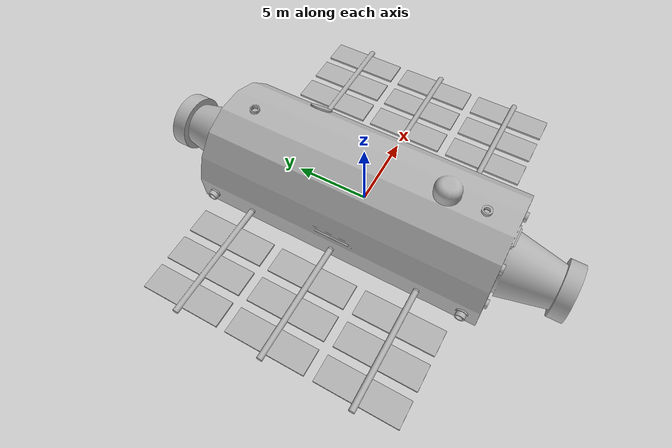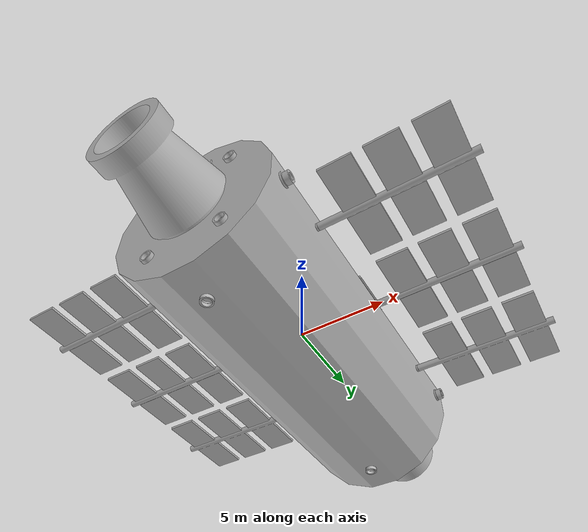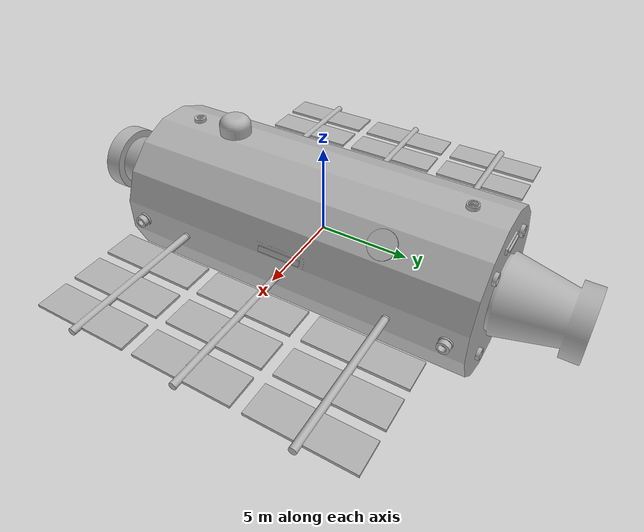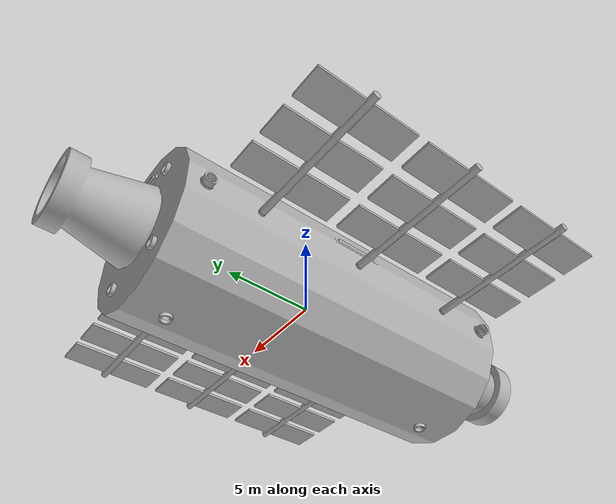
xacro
<?xml version="1.0" ?>
<robot name="space_station" xmlns:xacro="http://www.ros.org/wiki/xacro">

<xacro:include filename="$(find space_station_description)/urdf/materials.xacro" />
<xacro:include filename="$(find space_station_description)/urdf/space_station.trans" />
<xacro:include filename="$(find space_station_description)/urdf/space_station.gazebo" />

<xacro:property name="use_fixed_joint" value="true"/>

<link name="base_link">
  <inertial>
    <origin xyz="0.000574324589074325 0.030373043905383902 0.008402956067706836" rpy="0 0 0"/>
    <mass value="15000.0"/>
    <inertia ixx="367106180.976249" iyy="95256060.656933" izz="366784605.89785" ixy="32671.823244" iyz="420616.843653" ixz="-4413.413957"/>
  </inertial>
  <visual>
    <origin xyz="0 0 0" rpy="0 0 0"/>
    <geometry>
      <mesh filename="file://$(find space_station_description)/meshes/base_link.stl" scale="0.001 0.001 0.001"/>
    </geometry>
    <material name="silver"/>
  </visual>
  <collision>
    <origin xyz="0 0 0" rpy="0 0 0"/>
    <geometry>
      <mesh filename="file://$(find space_station_description)/meshes/base_link.stl" scale="0.001 0.001 0.001"/>
    </geometry>
  </collision>
</link>

<link name="th2_1">
  <inertial>
    <origin xyz="-0.011407106149771806 -0.09999999999999964 0.00605200870657896" rpy="0 0 0"/>
    <mass value="212.70545760211388"/>
    <inertia ixx="9.63613" iyy="17.820615" izz="9.602522" ixy="0.0" iyz="-0.0" ixz="-0.024814"/>
  </inertial>
  <visual>
    <origin xyz="-2.007871 10.0 -2.495824" rpy="0 0 0"/>
    <geometry>
      <mesh filename="file://$(find space_station_description)/meshes/th2_1.stl" scale="0.001 0.001 0.001"/>
    </geometry>
    <material name="silver"/>
  </visual>
  <collision>
    <origin xyz="-2.007871 10.0 -2.495824" rpy="0 0 0"/>
    <geometry>
      <mesh filename="file://$(find space_station_description)/meshes/th2_1.stl" scale="0.001 0.001 0.001"/>
    </geometry>
  </collision>
</link>

<link name="th1_1">
  <inertial>
    <origin xyz="-0.02972025496014319 -0.09999999999999964 0.005554958615336503" rpy="0 0 0"/>
    <mass value="212.7054576021139"/>
    <inertia ixx="9.638203" iyy="17.551943" izz="9.331777" ixy="-0.0" iyz="0.0" ixz="-0.059344"/>
  </inertial>
  <visual>
    <origin xyz="-2.020507 10.0 2.503833" rpy="0 0 0"/>
    <geometry>
      <mesh filename="file://$(find space_station_description)/meshes/th1_1.stl" scale="0.001 0.001 0.001"/>
    </geometry>
    <material name="silver"/>
  </visual>
  <collision>
    <origin xyz="-2.020507 10.0 2.503833" rpy="0 0 0"/>
    <geometry>
      <mesh filename="file://$(find space_station_description)/meshes/th1_1.stl" scale="0.001 0.001 0.001"/>
    </geometry>
  </collision>
</link>

<link name="camera_front_1">
  <inertial>
    <origin xyz="0.0041090989999844965 -0.05000000000000071 -0.0004997698338091716" rpy="0 0 0"/>
    <mass value="125.89847784256487"/>
    <inertia ixx="0.308196" iyy="18.365409" izz="18.267044" ixy="0.0" iyz="0.0" ixz="-0.000259"/>
  </inertial>
  <visual>
    <origin xyz="-0.0 10.1 -3.15" rpy="0 0 0"/>
    <geometry>
      <mesh filename="file://$(find space_station_description)/meshes/camera_front_1.stl" scale="0.001 0.001 0.001"/>
    </geometry>
    <material name="silver"/>
  </visual>
  <collision>
    <origin xyz="-0.0 10.1 -3.15" rpy="0 0 0"/>
    <geometry>
      <mesh filename="file://$(find space_station_description)/meshes/camera_front_1.stl" scale="0.001 0.001 0.001"/>
    </geometry>
  </collision>
</link>

<link name="th4_1">
  <inertial>
    <origin xyz="-0.0230030327810804 -0.20000000000005436 0.002243586799012043" rpy="0 0 0"/>
    <mass value="212.70545760211388"/>
    <inertia ixx="9.647485" iyy="17.688527" izz="9.459079" ixy="0.0" iyz="-0.0" ixz="-0.018554"/>
  </inertial>
  <visual>
    <origin xyz="1.984128 9.9 -2.498452" rpy="0 0 0"/>
    <geometry>
      <mesh filename="file://$(find space_station_description)/meshes/th4_1.stl" scale="0.001 0.001 0.001"/>
    </geometry>
    <material name="silver"/>
  </visual>
  <collision>
    <origin xyz="1.984128 9.9 -2.498452" rpy="0 0 0"/>
    <geometry>
      <mesh filename="file://$(find space_station_description)/meshes/th4_1.stl" scale="0.001 0.001 0.001"/>
    </geometry>
  </collision>
</link>

<link name="docking_port_back_1">
  <inertial>
    <origin xyz="0.044966206089208094 -1.8355220724311785 -0.011434572980852235" rpy="0 0 0"/>
    <mass value="233731.50121118044"/>
    <inertia ixx="681356.265853" iyy="594986.526547" izz="679924.980351" ixy="-898.843224" iyz="228.573731" ixz="-389.136998"/>
  </inertial>
  <visual>
    <origin xyz="0.100631 10.0 -0.02559" rpy="0 0 0"/>
    <geometry>
      <mesh filename="file://$(find space_station_description)/meshes/docking_port_back_1.stl" scale="0.001 0.001 0.001"/>
    </geometry>
    <material name="silver"/>
  </visual>
  <collision>
    <origin xyz="0.100631 10.0 -0.02559" rpy="0 0 0"/>
    <geometry>
      <mesh filename="file://$(find space_station_description)/meshes/docking_port_back_1.stl" scale="0.001 0.001 0.001"/>
    </geometry>
  </collision>
</link>

<link name="th3_1">
  <inertial>
    <origin xyz="-0.012369628789436371 -0.09999999999999609 0.013267970266699791" rpy="0 0 0"/>
    <mass value="212.70545760211388"/>
    <inertia ixx="9.586016" iyy="17.762271" izz="9.594291" ixy="-0.0" iyz="-0.0" ixz="-0.058996"/>
  </inertial>
  <visual>
    <origin xyz="1.991465 10.0 2.509155" rpy="0 0 0"/>
    <geometry>
      <mesh filename="file://$(find space_station_description)/meshes/th3_1.stl" scale="0.001 0.001 0.001"/>
    </geometry>
    <material name="silver"/>
  </visual>
  <collision>
    <origin xyz="1.991465 10.0 2.509155" rpy="0 0 0"/>
    <geometry>
      <mesh filename="file://$(find space_station_description)/meshes/th3_1.stl" scale="0.001 0.001 0.001"/>
    </geometry>
  </collision>
</link>

<link name="th9_1">
  <inertial>
    <origin xyz="0.14999999999999858 0.0015750680123911565 0.002185974817124674" rpy="0 0 0"/>
    <mass value="485.5233271352601"/>
    <inertia ixx="35.34286" iyy="21.311382" izz="21.314328" ixy="0.0" iyz="0.004414" ixz="0.0"/>
  </inertial>
  <visual>
    <origin xyz="-4.5 9.0 -0.0" rpy="0 0 0"/>
    <geometry>
      <mesh filename="file://$(find space_station_description)/meshes/th9_1.stl" scale="0.001 0.001 0.001"/>
    </geometry>
    <material name="silver"/>
  </visual>
  <collision>
    <origin xyz="-4.5 9.0 -0.0" rpy="0 0 0"/>
    <geometry>
      <mesh filename="file://$(find space_station_description)/meshes/th9_1.stl" scale="0.001 0.001 0.001"/>
    </geometry>
  </collision>
</link>

<link name="rsa_1_1">
  <inertial>
    <origin xyz="4.395937349552122 0.0 -0.019796867477606176" rpy="0 0 0"/>
    <mass value="37917.93074581755"/>
    <inertia ixx="78986.901098" iyy="152360.306972" izz="231068.964489" ixy="-0.0" iyz="0.0" ixz="78.115279"/>
  </inertial>
  <visual>
    <origin xyz="-4.5 6.0 -0.0" rpy="0 0 0"/>
    <geometry>
      <mesh filename="file://$(find space_station_description)/meshes/rsa_1_1.stl" scale="0.001 0.001 0.001"/>
    </geometry>
    <material name="silver"/>
  </visual>
  <collision>
    <origin xyz="-4.5 6.0 -0.0" rpy="0 0 0"/>
    <geometry>
      <mesh filename="file://$(find space_station_description)/meshes/rsa_1_1.stl" scale="0.001 0.001 0.001"/>
    </geometry>
  </collision>
</link>

<link name="rsa_2_1">
  <inertial>
    <origin xyz="4.395937349552122 0.0 -0.019796867477606204" rpy="0 0 0"/>
    <mass value="37917.93074581756"/>
    <inertia ixx="78986.901098" iyy="152360.306972" izz="231068.964489" ixy="0.0" iyz="0.0" ixz="78.115279"/>
  </inertial>
  <visual>
    <origin xyz="-4.5 -0.0 -0.0" rpy="0 0 0"/>
    <geometry>
      <mesh filename="file://$(find space_station_description)/meshes/rsa_2_1.stl" scale="0.001 0.001 0.001"/>
    </geometry>
    <material name="silver"/>
  </visual>
  <collision>
    <origin xyz="-4.5 -0.0 -0.0" rpy="0 0 0"/>
    <geometry>
      <mesh filename="file://$(find space_station_description)/meshes/rsa_2_1.stl" scale="0.001 0.001 0.001"/>
    </geometry>
  </collision>
</link>

<link name="rsa_3_1">
  <inertial>
    <origin xyz="4.395937349552122 8.881784197001252e-16 -0.019796867477606176" rpy="0 0 0"/>
    <mass value="37917.93074581755"/>
    <inertia ixx="78986.901098" iyy="152360.306972" izz="231068.964489" ixy="0.0" iyz="0.0" ixz="78.115279"/>
  </inertial>
  <visual>
    <origin xyz="-4.5 -6.0 -0.0" rpy="0 0 0"/>
    <geometry>
      <mesh filename="file://$(find space_station_description)/meshes/rsa_3_1.stl" scale="0.001 0.001 0.001"/>
    </geometry>
    <material name="silver"/>
  </visual>
  <collision>
    <origin xyz="-4.5 -6.0 -0.0" rpy="0 0 0"/>
    <geometry>
      <mesh filename="file://$(find space_station_description)/meshes/rsa_3_1.stl" scale="0.001 0.001 0.001"/>
    </geometry>
  </collision>
</link>

<link name="th10_1">
  <inertial>
    <origin xyz="0.14999999999999858 0.0140756566068454 0.004128165376782233" rpy="0 0 0"/>
    <mass value="485.5233271352601"/>
    <inertia ixx="35.076306" iyy="21.29566" izz="21.063497" ixy="0.0" iyz="0.074498" ixz="-0.0"/>
  </inertial>
  <visual>
    <origin xyz="-4.5 -9.0 -0.0" rpy="0 0 0"/>
    <geometry>
      <mesh filename="file://$(find space_station_description)/meshes/th10_1.stl" scale="0.001 0.001 0.001"/>
    </geometry>
    <material name="silver"/>
  </visual>
  <collision>
    <origin xyz="-4.5 -9.0 -0.0" rpy="0 0 0"/>
    <geometry>
      <mesh filename="file://$(find space_station_description)/meshes/th10_1.stl" scale="0.001 0.001 0.001"/>
    </geometry>
  </collision>
</link>

<link name="camera_right_1">
  <inertial>
    <origin xyz="0.04619425833027524 2.4912674780400157e-07 0.01913383550365877" rpy="0 0 0"/>
    <mass value="565.2000000000029"/>
    <inertia ixx="274.983189" iyy="4.71" izz="272.318811" ixy="0.0" iyz="0.0" ixz="1.332189"/>
  </inertial>
  <visual>
    <origin xyz="-4.299176 0.020923 -1.144756" rpy="0 0 0"/>
    <geometry>
      <mesh filename="file://$(find space_station_description)/meshes/camera_right_1.stl" scale="0.001 0.001 0.001"/>
    </geometry>
    <material name="silver"/>
  </visual>
  <collision>
    <origin xyz="-4.299176 0.020923 -1.144756" rpy="0 0 0"/>
    <geometry>
      <mesh filename="file://$(find space_station_description)/meshes/camera_right_1.stl" scale="0.001 0.001 0.001"/>
    </geometry>
  </collision>
</link>

<link name="th14_1">
  <inertial>
    <origin xyz="0.016385047452796484 -0.002269094695383167 0.09999999999999787" rpy="0 0 0"/>
    <mass value="323.68221809017336"/>
    <inertia ixx="12.858594" iyy="12.633517" izz="23.334229" ixy="-0.031785" iyz="-0.0" ixz="-0.0"/>
  </inertial>
  <visual>
    <origin xyz="0.026882 7.996277 -4.4" rpy="0 0 0"/>
    <geometry>
      <mesh filename="file://$(find space_station_description)/meshes/th14_1.stl" scale="0.001 0.001 0.001"/>
    </geometry>
    <material name="silver"/>
  </visual>
  <collision>
    <origin xyz="0.026882 7.996277 -4.4" rpy="0 0 0"/>
    <geometry>
      <mesh filename="file://$(find space_station_description)/meshes/th14_1.stl" scale="0.001 0.001 0.001"/>
    </geometry>
  </collision>
</link>

<link name="th13_1">
  <inertial>
    <origin xyz="3.029459121478274e-17 1.7763568394002505e-15 0.09999999999999698" rpy="0 0 0"/>
    <mass value="212.70545760211388"/>
    <inertia ixx="9.649294" iyy="9.649294" izz="17.880553" ixy="-0.0" iyz="0.0" ixz="0.0"/>
  </inertial>
  <visual>
    <origin xyz="0.0 -8.0 -4.4" rpy="0 0 0"/>
    <geometry>
      <mesh filename="file://$(find space_station_description)/meshes/th13_1.stl" scale="0.001 0.001 0.001"/>
    </geometry>
    <material name="silver"/>
  </visual>
  <collision>
    <origin xyz="0.0 -8.0 -4.4" rpy="0 0 0"/>
    <geometry>
      <mesh filename="file://$(find space_station_description)/meshes/th13_1.stl" scale="0.001 0.001 0.001"/>
    </geometry>
  </collision>
</link>

<link name="canada_arm_base_1">
  <inertial>
    <origin xyz="0.035355244091976434 -4.085620730620576e-14 0.03535524409192714" rpy="0 0 0"/>
    <mass value="1387.2095061007365"/>
    <inertia ixx="293.192509" iyy="196.232345" izz="293.192509" ixy="-0.0" iyz="-0.0" ixz="96.960164"/>
  </inertial>
  <visual>
    <origin xyz="-3.118341 -5.0 -3.118341" rpy="0 0 0"/>
    <geometry>
      <mesh filename="file://$(find space_station_description)/meshes/canada_arm_base_1.stl" scale="0.001 0.001 0.001"/>
    </geometry>
    <material name="silver"/>
  </visual>
  <collision>
    <origin xyz="-3.118341 -5.0 -3.118341" rpy="0 0 0"/>
    <geometry>
      <mesh filename="file://$(find space_station_description)/meshes/canada_arm_base_1.stl" scale="0.001 0.001 0.001"/>
    </geometry>
  </collision>
</link>

<link name="th11_1">
  <inertial>
    <origin xyz="-0.15000000000000124 0.0 5.728486622729424e-17" rpy="0 0 0"/>
    <mass value="319.058186403171"/>
    <inertia ixx="26.820829" iyy="15.803351" izz="15.803351" ixy="0.0" iyz="-0.0" ixz="0.0"/>
  </inertial>
  <visual>
    <origin xyz="4.5 9.0 -0.0" rpy="0 0 0"/>
    <geometry>
      <mesh filename="file://$(find space_station_description)/meshes/th11_1.stl" scale="0.001 0.001 0.001"/>
    </geometry>
    <material name="silver"/>
  </visual>
  <collision>
    <origin xyz="4.5 9.0 -0.0" rpy="0 0 0"/>
    <geometry>
      <mesh filename="file://$(find space_station_description)/meshes/th11_1.stl" scale="0.001 0.001 0.001"/>
    </geometry>
  </collision>
</link>

<link name="lsa_1_1">
  <inertial>
    <origin xyz="-4.395937349552124 8.881784197001252e-16 -0.019796867477606176" rpy="0 0 0"/>
    <mass value="37917.93074581755"/>
    <inertia ixx="78986.901098" iyy="152360.306972" izz="231068.964489" ixy="-0.0" iyz="-0.0" ixz="-78.115279"/>
  </inertial>
  <visual>
    <origin xyz="4.5 6.0 -0.0" rpy="0 0 0"/>
    <geometry>
      <mesh filename="file://$(find space_station_description)/meshes/lsa_1_1.stl" scale="0.001 0.001 0.001"/>
    </geometry>
    <material name="silver"/>
  </visual>
  <collision>
    <origin xyz="4.5 6.0 -0.0" rpy="0 0 0"/>
    <geometry>
      <mesh filename="file://$(find space_station_description)/meshes/lsa_1_1.stl" scale="0.001 0.001 0.001"/>
    </geometry>
  </collision>
</link>

<link name="camera_left_1">
  <inertial>
    <origin xyz="-0.04619425833027346 2.4912674780400157e-07 0.01913383550365877" rpy="0 0 0"/>
    <mass value="565.2000000000025"/>
    <inertia ixx="274.983189" iyy="4.71" izz="272.318811" ixy="-0.0" iyz="-0.0" ixz="-1.332189"/>
  </inertial>
  <visual>
    <origin xyz="4.299176 0.020923 -1.144756" rpy="0 0 0"/>
    <geometry>
      <mesh filename="file://$(find space_station_description)/meshes/camera_left_1.stl" scale="0.001 0.001 0.001"/>
    </geometry>
    <material name="silver"/>
  </visual>
  <collision>
    <origin xyz="4.299176 0.020923 -1.144756" rpy="0 0 0"/>
    <geometry>
      <mesh filename="file://$(find space_station_description)/meshes/camera_left_1.stl" scale="0.001 0.001 0.001"/>
    </geometry>
  </collision>
</link>

<link name="lsa_2_1">
  <inertial>
    <origin xyz="-4.395937349552122 0.0 -0.019796867477606204" rpy="0 0 0"/>
    <mass value="37917.93074581756"/>
    <inertia ixx="78986.901098" iyy="152360.306972" izz="231068.964489" ixy="-0.0" iyz="0.0" ixz="-78.115279"/>
  </inertial>
  <visual>
    <origin xyz="4.5 -0.0 -0.0" rpy="0 0 0"/>
    <geometry>
      <mesh filename="file://$(find space_station_description)/meshes/lsa_2_1.stl" scale="0.001 0.001 0.001"/>
    </geometry>
    <material name="silver"/>
  </visual>
  <collision>
    <origin xyz="4.5 -0.0 -0.0" rpy="0 0 0"/>
    <geometry>
      <mesh filename="file://$(find space_station_description)/meshes/lsa_2_1.stl" scale="0.001 0.001 0.001"/>
    </geometry>
  </collision>
</link>

<link name="th12_1">
  <inertial>
    <origin xyz="-0.15000000000000124 0.01431200139042943 0.005829799887012026" rpy="0 0 0"/>
    <mass value="319.058186403171"/>
    <inertia ixx="26.692055" iyy="15.785025" izz="15.692903" ixy="-0.0" iyz="0.044989" ixz="0.0"/>
  </inertial>
  <visual>
    <origin xyz="4.5 -9.0 -0.0" rpy="0 0 0"/>
    <geometry>
      <mesh filename="file://$(find space_station_description)/meshes/th12_1.stl" scale="0.001 0.001 0.001"/>
    </geometry>
    <material name="silver"/>
  </visual>
  <collision>
    <origin xyz="4.5 -9.0 -0.0" rpy="0 0 0"/>
    <geometry>
      <mesh filename="file://$(find space_station_description)/meshes/th12_1.stl" scale="0.001 0.001 0.001"/>
    </geometry>
  </collision>
</link>

<link name="lsa_3_1">
  <inertial>
    <origin xyz="-4.395937349552124 8.881784197001252e-16 -0.019796867477606176" rpy="0 0 0"/>
    <mass value="37917.93074581755"/>
    <inertia ixx="78986.901098" iyy="152360.306972" izz="231068.964489" ixy="-0.0" iyz="0.0" ixz="-78.115279"/>
  </inertial>
  <visual>
    <origin xyz="4.5 -6.0 -0.0" rpy="0 0 0"/>
    <geometry>
      <mesh filename="file://$(find space_station_description)/meshes/lsa_3_1.stl" scale="0.001 0.001 0.001"/>
    </geometry>
    <material name="silver"/>
  </visual>
  <collision>
    <origin xyz="4.5 -6.0 -0.0" rpy="0 0 0"/>
    <geometry>
      <mesh filename="file://$(find space_station_description)/meshes/lsa_3_1.stl" scale="0.001 0.001 0.001"/>
    </geometry>
  </collision>
</link>

<link name="th16_1">
  <inertial>
    <origin xyz="-0.009695745153111699 -0.003034617655115923 -0.09999999999999876" rpy="0 0 0"/>
    <mass value="212.70545760211388"/>
    <inertia ixx="9.645985" iyy="9.6155" izz="17.843448" ixy="0.010576" iyz="0.0" ixz="-0.0"/>
  </inertial>
  <visual>
    <origin xyz="-0.00669 7.997906 4.4" rpy="0 0 0"/>
    <geometry>
      <mesh filename="file://$(find space_station_description)/meshes/th16_1.stl" scale="0.001 0.001 0.001"/>
    </geometry>
    <material name="silver"/>
  </visual>
  <collision>
    <origin xyz="-0.00669 7.997906 4.4" rpy="0 0 0"/>
    <geometry>
      <mesh filename="file://$(find space_station_description)/meshes/th16_1.stl" scale="0.001 0.001 0.001"/>
    </geometry>
  </collision>
</link>

<link name="th15_1">
  <inertial>
    <origin xyz="-0.0017984688940079069 -0.004427691520348276 -0.09999999999999876" rpy="0 0 0"/>
    <mass value="212.70545760211388"/>
    <inertia ixx="9.642246" iyy="9.648132" izz="17.872342" ixy="0.002862" iyz="0.0" ixz="-0.0"/>
  </inertial>
  <visual>
    <origin xyz="-0.001241 -8.003055 4.4" rpy="0 0 0"/>
    <geometry>
      <mesh filename="file://$(find space_station_description)/meshes/th15_1.stl" scale="0.001 0.001 0.001"/>
    </geometry>
    <material name="silver"/>
  </visual>
  <collision>
    <origin xyz="-0.001241 -8.003055 4.4" rpy="0 0 0"/>
    <geometry>
      <mesh filename="file://$(find space_station_description)/meshes/th15_1.stl" scale="0.001 0.001 0.001"/>
    </geometry>
  </collision>
</link>

<link name="th8_1">
  <inertial>
    <origin xyz="2.220446049250313e-16 0.09999999999999964 -4.440892098500626e-16" rpy="0 0 0"/>
    <mass value="212.7054576021139"/>
    <inertia ixx="9.649294" iyy="17.880553" izz="9.649294" ixy="0.0" iyz="-0.0" ixz="0.0"/>
  </inertial>
  <visual>
    <origin xyz="2.0 -10.0 -2.5" rpy="0 0 0"/>
    <geometry>
      <mesh filename="file://$(find space_station_description)/meshes/th8_1.stl" scale="0.001 0.001 0.001"/>
    </geometry>
    <material name="silver"/>
  </visual>
  <collision>
    <origin xyz="2.0 -10.0 -2.5" rpy="0 0 0"/>
    <geometry>
      <mesh filename="file://$(find space_station_description)/meshes/th8_1.stl" scale="0.001 0.001 0.001"/>
    </geometry>
  </collision>
</link>

<link name="th7_1">
  <inertial>
    <origin xyz="-0.025539251025601617 0.09999999999999964 0.010049332143581502" rpy="0 0 0"/>
    <mass value="212.7054576021139"/>
    <inertia ixx="9.612991" iyy="17.609777" izz="9.414823" ixy="0.0" iyz="0.0" ixz="-0.092262"/>
  </inertial>
  <visual>
    <origin xyz="1.982378 -10.0 2.506934" rpy="0 0 0"/>
    <geometry>
      <mesh filename="file://$(find space_station_description)/meshes/th7_1.stl" scale="0.001 0.001 0.001"/>
    </geometry>
    <material name="silver"/>
  </visual>
  <collision>
    <origin xyz="1.982378 -10.0 2.506934" rpy="0 0 0"/>
    <geometry>
      <mesh filename="file://$(find space_station_description)/meshes/th7_1.stl" scale="0.001 0.001 0.001"/>
    </geometry>
  </collision>
</link>

<link name="th6_1">
  <inertial>
    <origin xyz="-1.3719873859230347e-07 0.09999999999999964 -1.0421835394680556e-07" rpy="0 0 0"/>
    <mass value="212.7054576021139"/>
    <inertia ixx="9.649294" iyy="17.880553" izz="9.649294" ixy="0.0" iyz="-0.0" ixz="0.0"/>
  </inertial>
  <visual>
    <origin xyz="-2.000104 -10.0 2.503617" rpy="0 0 0"/>
    <geometry>
      <mesh filename="file://$(find space_station_description)/meshes/th6_1.stl" scale="0.001 0.001 0.001"/>
    </geometry>
    <material name="silver"/>
  </visual>
  <collision>
    <origin xyz="-2.000104 -10.0 2.503617" rpy="0 0 0"/>
    <geometry>
      <mesh filename="file://$(find space_station_description)/meshes/th6_1.stl" scale="0.001 0.001 0.001"/>
    </geometry>
  </collision>
</link>

<link name="camera_back_1">
  <inertial>
    <origin xyz="0.0041090989999844965 0.05000000000000071 -0.0004997698338091716" rpy="0 0 0"/>
    <mass value="125.89847784256487"/>
    <inertia ixx="0.308196" iyy="18.365409" izz="18.267044" ixy="-0.0" iyz="0.0" ixz="-0.000259"/>
  </inertial>
  <visual>
    <origin xyz="-0.0 -10.1 -3.15" rpy="0 0 0"/>
    <geometry>
      <mesh filename="file://$(find space_station_description)/meshes/camera_back_1.stl" scale="0.001 0.001 0.001"/>
    </geometry>
    <material name="silver"/>
  </visual>
  <collision>
    <origin xyz="-0.0 -10.1 -3.15" rpy="0 0 0"/>
    <geometry>
      <mesh filename="file://$(find space_station_description)/meshes/camera_back_1.stl" scale="0.001 0.001 0.001"/>
    </geometry>
  </collision>
</link>

<link name="th5_1">
  <inertial>
    <origin xyz="-0.00015052579892915752 0.09999999999999964 0.005242180026600707" rpy="0 0 0"/>
    <mass value="212.7054576021139"/>
    <inertia ixx="9.639416" iyy="17.870666" izz="9.649286" ixy="-0.0" iyz="0.0" ixz="-0.000284"/>
  </inertial>
  <visual>
    <origin xyz="-2.0 -10.0 -2.5" rpy="0 0 0"/>
    <geometry>
      <mesh filename="file://$(find space_station_description)/meshes/th5_1.stl" scale="0.001 0.001 0.001"/>
    </geometry>
    <material name="silver"/>
  </visual>
  <collision>
    <origin xyz="-2.0 -10.0 -2.5" rpy="0 0 0"/>
    <geometry>
      <mesh filename="file://$(find space_station_description)/meshes/th5_1.stl" scale="0.001 0.001 0.001"/>
    </geometry>
  </collision>
</link>

<link name="docking_port_front_1">
  <inertial>
    <origin xyz="-0.0011701302631783206 1.6938550352951953 0.0023416593849563145" rpy="0 0 0"/>
    <mass value="308332.545761487"/>
    <inertia ixx="762245.424635" iyy="641725.412691" izz="762259.800532" ixy="471.243053" iyz="-943.049464" ixz="-9.574394"/>
  </inertial>
  <visual>
    <origin xyz="-0.0 -10.0 0.0" rpy="0 0 0"/>
    <geometry>
      <mesh filename="file://$(find space_station_description)/meshes/docking_port_front_1.stl" scale="0.001 0.001 0.001"/>
    </geometry>
    <material name="silver"/>
  </visual>
  <collision>
    <origin xyz="-0.0 -10.0 0.0" rpy="0 0 0"/>
    <geometry>
      <mesh filename="file://$(find space_station_description)/meshes/docking_port_front_1.stl" scale="0.001 0.001 0.001"/>
    </geometry>
  </collision>
</link>

<joint name="xp_th_1" type="${'fixed' if str(use_fixed_joint) == 'true' else 'continuous'}">
  <origin xyz="2.007871 -10.0 2.495824" rpy="0 0 0"/>
  <parent link="base_link"/>
  <child link="th2_1"/>
  <axis xyz="0.0 1.0 0.0"/>

</joint>

<joint name="xp_th_2" type="${'fixed' if str(use_fixed_joint) == 'true' else 'continuous'}">
  <origin xyz="2.020507 -10.0 -2.503833" rpy="0 0 0"/>
  <parent link="base_link"/>
  <child link="th1_1"/>
  <axis xyz="0.0 1.0 0.0"/>

</joint>

<joint name="camera_b" type="fixed">
  <origin xyz="0.0 -10.1 3.15" rpy="0 0 0"/>
  <parent link="base_link"/>
  <child link="camera_front_1"/>
  <axis xyz="0.0 -1.0 0.0"/>
  <limit upper="0.0" lower="0.0" effort="100" velocity="100"/>
</joint>

<joint name="xp_th_3" type="${'fixed' if str(use_fixed_joint) == 'true' else 'continuous'}">
  <origin xyz="-1.984128 -9.9 2.498452" rpy="0 0 0"/>
  <parent link="base_link"/>
  <child link="th4_1"/>
  <axis xyz="0.0 -1.0 0.0"/>

</joint>

<joint name="docking_port_b" type="revolute">
  <origin xyz="-0.100631 -10.0 0.02559" rpy="0 0 0"/>
  <parent link="base_link"/>
  <child link="docking_port_back_1"/>
  <axis xyz="0.0 1.0 0.0"/>
  <limit upper="0.0" lower="0.0" effort="100" velocity="100"/>
</joint>

<joint name="xp_th_4" type="${'fixed' if str(use_fixed_joint) == 'true' else 'continuous'}">
  <origin xyz="-1.991465 -10.0 -2.509155" rpy="0 0 0"/>
  <parent link="base_link"/>
  <child link="th3_1"/>
  <axis xyz="0.0 1.0 0.0"/>

</joint>

<joint name="yn_th_1" type="${'fixed' if str(use_fixed_joint) == 'true' else 'continuous'}">
  <origin xyz="4.5 -9.0 0.0" rpy="0 0 0"/>
  <parent link="base_link"/>
  <child link="th9_1"/>
  <axis xyz="1.0 0.0 0.0"/>

</joint>

<joint name="rsa_1" type="${'fixed' if str(use_fixed_joint) == 'true' else 'continuous'}">
  <origin xyz="4.5 -6.0 0.0" rpy="0 0 0"/>
  <parent link="base_link"/>
  <child link="rsa_1_1"/>
  <axis xyz="1.0 0.0 0.0"/>
</joint>

<joint name="rsa_2" type="${'fixed' if str(use_fixed_joint) == 'true' else 'continuous'}">
  <origin xyz="4.5 0.0 0.0" rpy="0 0 0"/>
  <parent link="base_link"/>
  <child link="rsa_2_1"/>
  <axis xyz="1.0 0.0 0.0"/>
</joint>

<joint name="rsa_3" type="${'fixed' if str(use_fixed_joint) == 'true' else 'continuous'}">
  <origin xyz="4.5 6.0 0.0" rpy="0 0 0"/>
  <parent link="base_link"/>
  <child link="rsa_3_1"/>
  <axis xyz="1.0 0.0 0.0"/>
</joint>

<joint name="yn_th_2" type="${'fixed' if str(use_fixed_joint) == 'true' else 'continuous'}">
  <origin xyz="4.5 9.0 0.0" rpy="0 0 0"/>
  <parent link="base_link"/>
  <child link="th10_1"/>
  <axis xyz="1.0 0.0 0.0"/>

</joint>

<joint name="camera_r" type="fixed">
  <origin xyz="4.299176 -0.020923 1.144756" rpy="0 0 0"/>
  <parent link="base_link"/>
  <child link="camera_right_1"/>
  <axis xyz="0.92388 0.0 0.382683"/>

</joint>

<joint name="zn_th_1" type="${'fixed' if str(use_fixed_joint) == 'true' else 'continuous'}">
  <origin xyz="-0.026882 -7.996277 4.4" rpy="0 0 0"/>
  <parent link="base_link"/>
  <child link="th14_1"/>
  <axis xyz="0.0 0.0 -1.0"/>

</joint>

<joint name="zn_th_2" type="${'fixed' if str(use_fixed_joint) == 'true' else 'continuous'}">
  <origin xyz="0.0 8.0 4.4" rpy="0 0 0"/>
  <parent link="base_link"/>
  <child link="th13_1"/>
  <axis xyz="0.0 0.0 -1.0"/>

</joint>

<joint name="canada_arm_ss_base" type="revolute">
  <origin xyz="3.118341 5.0 3.118341" rpy="0 0 0"/>
  <parent link="base_link"/>
  <child link="canada_arm_base_1"/>
  <axis xyz="0.707107 0.0 0.707107"/>
  <limit upper="0.0" lower="0.0" effort="100" velocity="100"/>
</joint>

<joint name="yp_th_1" type="${'fixed' if str(use_fixed_joint) == 'true' else 'continuous'}">
  <origin xyz="-4.5 -9.0 0.0" rpy="0 0 0"/>
  <parent link="base_link"/>
  <child link="th11_1"/>
  <axis xyz="-1.0 0.0 0.0"/>

</joint>

<joint name="lsa_1" type="${'fixed' if str(use_fixed_joint) == 'true' else 'continuous'}">
  <origin xyz="-4.5 -6.0 0.0" rpy="0 0 0"/>
  <parent link="base_link"/>
  <child link="lsa_1_1"/>
  <axis xyz="-1.0 0.0 0.0"/>
</joint>

<joint name="camera_l" type="fixed">
  <origin xyz="-4.299176 -0.020923 1.144756" rpy="0 0 3.14"/>
  <parent link="base_link"/>
  <child link="camera_left_1"/>
  <axis xyz="-0.92388 0.0 0.382683"/>
  <limit upper="0.0" lower="0.0" effort="100" velocity="100"/>
</joint>

<joint name="lsa_2" type="${'fixed' if str(use_fixed_joint) == 'true' else 'continuous'}">
  <origin xyz="-4.5 0.0 0.0" rpy="0 0 0"/>
  <parent link="base_link"/>
  <child link="lsa_2_1"/>
  <axis xyz="-1.0 0.0 0.0"/>
</joint>

<joint name="yp_th_2" type="${'fixed' if str(use_fixed_joint) == 'true' else 'continuous'}">
  <origin xyz="-4.5 9.0 0.0" rpy="0 0 0"/>
  <parent link="base_link"/>
  <child link="th12_1"/>
  <axis xyz="-1.0 0.0 0.0"/>

</joint>

<joint name="lsa_3" type="${'fixed' if str(use_fixed_joint) == 'true' else 'continuous'}">
  <origin xyz="-4.5 6.0 0.0" rpy="0 0 0"/>
  <parent link="base_link"/>
  <child link="lsa_3_1"/>
  <axis xyz="-1.0 0.0 0.0"/>

</joint>

<joint name="zp_th_1" type="${'fixed' if str(use_fixed_joint) == 'true' else 'continuous'}">
  <origin xyz="0.00669 -7.997906 -4.4" rpy="0 0 0"/>
  <parent link="base_link"/>
  <child link="th16_1"/>
  <axis xyz="0.0 0.0 1.0"/>

</joint>

<joint name="zp_th_2" type="${'fixed' if str(use_fixed_joint) == 'true' else 'continuous'}">
  <origin xyz="0.001241 8.003055 -4.4" rpy="0 0 0"/>
  <parent link="base_link"/>
  <child link="th15_1"/>
  <axis xyz="0.0 0.0 1.0"/>

</joint>

<joint name="xn_th_1" type="${'fixed' if str(use_fixed_joint) == 'true' else 'continuous'}">
  <origin xyz="-2.0 10.0 2.5" rpy="0 0 0"/>
  <parent link="base_link"/>
  <child link="th8_1"/>
  <axis xyz="0.0 -1.0 0.0"/>

</joint>

<joint name="xn_th_2" type="${'fixed' if str(use_fixed_joint) == 'true' else 'continuous'}">
  <origin xyz="-1.982378 10.0 -2.506934" rpy="0 0 0"/>
  <parent link="base_link"/>
  <child link="th7_1"/>
  <axis xyz="0.0 -1.0 0.0"/>

</joint>

<joint name="xn_th_3" type="${'fixed' if str(use_fixed_joint) == 'true' else 'continuous'}">
  <origin xyz="2.000104 10.0 -2.503617" rpy="0 0 0"/>
  <parent link="base_link"/>
  <child link="th6_1"/>
  <axis xyz="0.0 -1.0 0.0"/>

</joint>

<joint name="camera_f" type="fixed">
  <origin xyz="0.0 10.1 3.15" rpy="0 0 0"/>
  <parent link="base_link"/>
  <child link="camera_back_1"/>
  <axis xyz="0.0 1.0 0.0"/>
</joint>

<joint name="xn_th_4" type="${'fixed' if str(use_fixed_joint) == 'true' else 'continuous'}">
  <origin xyz="2.0 10.0 2.5" rpy="0 0 0"/>
  <parent link="base_link"/>
  <child link="th5_1"/>
  <axis xyz="0.0 -1.0 0.0"/>
</joint>

<joint name="docking_port_f" type="revolute">
  <origin xyz="0.0 10.0 0.0" rpy="0 0 0"/>
  <parent link="base_link"/>
  <child link="docking_port_front_1"/>
  <axis xyz="0.0 1.0 0.0"/>
  <limit upper="0.0" lower="0.0" effort="100" velocity="100"/>
</joint>

</robot>

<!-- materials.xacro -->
<robot name="space_station" xmlns:xacro="http://www.ros.org/wiki/xacro" >

<material name="silver">
  <color rgba="0.700 0.700 0.700 1.000"/>
</material>

</robot>

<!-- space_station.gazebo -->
<robot name="ssos_new" xmlns:xacro="http://www.ros.org/wiki/xacro" >

  <xacro:property name="body_color" value="Gazebo/White" />
  <xacro:property name="solar_panel" value="Gazebo/Blue" />
  <xacro:property name="thruster_panel" value="Gazebo/Black" />
  <xacro:property name="docking" value="Gazebo/Silver"/>
  <xacro:property name="camera" value="Gazebo/Red"/>

<gazebo reference="base_link">
  <material>${body_color}</material>
 <mu1>100</mu1>
 <mu1>100</mu1>
  <self_collide>true</self_collide>
  <gravity>true</gravity>
</gazebo>

<gazebo reference="th2_1">
  <material>${thruster_panel}</material>
 <mu1>100</mu1>
 <mu1>100</mu1>
  <self_collide>true</self_collide>
</gazebo>

<gazebo reference="th1_1">
  <material>${thruster_panel}</material>
 <mu1>100</mu1>
 <mu1>100</mu1>
  <self_collide>true</self_collide>
</gazebo>

<gazebo reference="camera_front_1">
  <material>${camera}</material>
 <mu1>100</mu1>
 <mu1>100</mu1>
  <self_collide>true</self_collide>
</gazebo>

<gazebo reference="th4_1">
  <material>${thruster_panel}</material>
 <mu1>100</mu1>
 <mu1>100</mu1>
  <self_collide>true</self_collide>
</gazebo>

<gazebo reference="docking_port_back_1">
  <material>${docking}</material>
 <mu1>100</mu1>
 <mu1>100</mu1>
  <self_collide>true</self_collide>
</gazebo>

<gazebo reference="th3_1">
  <material>${thruster_panel}</material>
 <mu1>100</mu1>
 <mu1>100</mu1>
  <self_collide>true</self_collide>
</gazebo>

<gazebo reference="th9_1">
  <material>${thruster_panel}</material>
 <mu1>100</mu1>
 <mu1>100</mu1>
  <self_collide>true</self_collide>
</gazebo>

<gazebo reference="rsa_1_1">
  <material>${solar_panel}</material>
 <mu1>100</mu1>
 <mu1>100</mu1>
  <self_collide>true</self_collide>
</gazebo>

<gazebo reference="rsa_2_1">
  <material>${solar_panel}</material>
 <mu1>100</mu1>
 <mu1>100</mu1>
  <self_collide>true</self_collide>
</gazebo>

<gazebo reference="rsa_3_1">
  <material>${solar_panel}</material>
 <mu1>100</mu1>
 <mu1>100</mu1>
  <self_collide>true</self_collide>
</gazebo>

<gazebo reference="th10_1">
  <material>${thruster_panel}</material>
 <mu1>100</mu1>
 <mu1>100</mu1>
  <self_collide>true</self_collide>
</gazebo>

<gazebo reference="camera_right_1">
  <material>${camera}</material>
 <mu1>100</mu1>
 <mu1>100</mu1>
  <self_collide>true</self_collide>
</gazebo>

<gazebo reference="th14_1">
  <material>${thruster_panel}</material>
 <mu1>100</mu1>
 <mu1>100</mu1>
  <self_collide>true</self_collide>
</gazebo>

<gazebo reference="th13_1">
  <material>${thruster_panel}</material>
 <mu1>100</mu1>
 <mu1>100</mu1>
  <self_collide>true</self_collide>
</gazebo>

<gazebo reference="canada_arm_base_1">
  <material>${thruster_panel}</material>
 <mu1>100</mu1>
 <mu1>100</mu1>
  <self_collide>true</self_collide>
</gazebo>

<gazebo reference="th11_1">
  <material>${thruster_panel}</material>
 <mu1>100</mu1>
 <mu1>100</mu1>
  <self_collide>true</self_collide>
</gazebo>

<gazebo reference="lsa_1_1">
  <material>${solar_panel}</material>
 <mu1>100</mu1>
 <mu1>100</mu1>
  <self_collide>true</self_collide>
</gazebo>

<gazebo reference="camera_left_1">
  <material>${camera}</material>
 <mu1>100</mu1>
 <mu1>100</mu1>
  <self_collide>true</self_collide>
</gazebo>

<gazebo reference="lsa_2_1">
  <material>${solar_panel}</material>
 <mu1>100</mu1>
 <mu1>100</mu1>
  <self_collide>true</self_collide>
</gazebo>

<gazebo reference="th12_1">
  <material>${thruster_panel}</material>
 <mu1>100</mu1>
 <mu1>100</mu1>
  <self_collide>true</self_collide>
</gazebo>

<gazebo reference="lsa_3_1">
  <material>${solar_panel}</material>
 <mu1>100</mu1>
 <mu1>100</mu1>
  <self_collide>true</self_collide>
</gazebo>

<gazebo reference="th16_1">
  <material>${thruster_panel}</material>
 <mu1>100</mu1>
 <mu1>100</mu1>
  <self_collide>true</self_collide>
</gazebo>

<gazebo reference="th15_1">
  <material>${thruster_panel}</material>
 <mu1>100</mu1>
 <mu1>100</mu1>
  <self_collide>true</self_collide>
</gazebo>

<gazebo reference="th8_1">
  <material>${thruster_panel}</material>
 <mu1>100</mu1>
 <mu1>100</mu1>
  <self_collide>true</self_collide>
</gazebo>

<gazebo reference="th7_1">
  <material>${thruster_panel}</material>
 <mu1>100</mu1>
 <mu1>100</mu1>
  <self_collide>true</self_collide>
</gazebo>

<gazebo reference="th6_1">
  <material>${thruster_panel}</material>
 <mu1>100</mu1>
 <mu1>100</mu1>
  <self_collide>true</self_collide>
</gazebo>

<gazebo reference="camera_back_1">
  <material>${camera}</material>
 <mu1>100</mu1>
 <mu1>100</mu1>
  <self_collide>true</self_collide>
</gazebo>

<gazebo reference="th5_1">
  <material>${thruster_panel}</material>
 <mu1>100</mu1>
 <mu1>100</mu1>
  <self_collide>true</self_collide>
</gazebo>

<gazebo reference="docking_port_front_1">
  <material>${docking}</material>
 <mu1>100</mu1>
 <mu1>100</mu1>
  <self_collide>true</self_collide>
</gazebo>
<gazebo>
    <plugin
    filename="libThermalPlugin.so"
    name="gz::sim::systems::ThermalPlugin"/>

</gazebo>
 <!-- Thruster Plugins -->
  <gazebo>
    <plugin filename="gz-sim-thruster-system" name="gz::sim::systems::Thruster">
      <joint_name>xp_th_1</joint_name>
      <thrust_coefficient>0.004</thrust_coefficient>
      <fluid_density>1000</fluid_density>
     <propeller_diameter>0.2</propeller_diameter>
      <max_thrust_cmd>10000</max_thrust_cmd>
      <min_thrust_cmd>100</min_thrust_cmd>
    </plugin>
  </gazebo>

  <gazebo>
    <plugin filename="gz-sim-thruster-system" name="gz::sim::systems::Thruster">
      <joint_name>xp_th_2</joint_name>
      <thrust_coefficient>0.004</thrust_coefficient>
      <fluid_density>1000</fluid_density>
     <propeller_diameter>0.2</propeller_diameter>
      <max_thrust_cmd>10000</max_thrust_cmd>
      <min_thrust_cmd>100</min_thrust_cmd>
    </plugin>
  </gazebo>

  <gazebo>
    <plugin filename="gz-sim-thruster-system" name="gz::sim::systems::Thruster">
      <joint_name>xp_th_3</joint_name>
      <thrust_coefficient>0.004</thrust_coefficient>
      <fluid_density>1000</fluid_density>
     <propeller_diameter>0.2</propeller_diameter>
      <max_thrust_cmd>10000</max_thrust_cmd>
      <min_thrust_cmd>100</min_thrust_cmd>
    </plugin>
  </gazebo>

  <gazebo>
    <plugin filename="gz-sim-thruster-system" name="gz::sim::systems::Thruster">
      <joint_name>xp_th_4</joint_name>
      <thrust_coefficient>0.004</thrust_coefficient>
      <fluid_density>1000</fluid_density>
     <propeller_diameter>0.2</propeller_diameter>
      <max_thrust_cmd>10000</max_thrust_cmd>
      <min_thrust_cmd>100</min_thrust_cmd>
    </plugin>
  </gazebo>

  <!-- Negative X -->
  <gazebo>
    <plugin filename="gz-sim-thruster-system" name="gz::sim::systems::Thruster">
      <joint_name>xn_th_1</joint_name>
      <thrust_coefficient>0.004</thrust_coefficient>
      <fluid_density>1000</fluid_density>
     <propeller_diameter>0.2</propeller_diameter>
      <max_thrust_cmd>10000</max_thrust_cmd>
      <min_thrust_cmd>100</min_thrust_cmd>
    </plugin>
  </gazebo>

  <gazebo>
    <plugin filename="gz-sim-thruster-system" name="gz::sim::systems::Thruster">
      <joint_name>xn_th_2</joint_name>
      <thrust_coefficient>0.004</thrust_coefficient>
      <fluid_density>1000</fluid_density>
     <propeller_diameter>0.2</propeller_diameter>
      <max_thrust_cmd>10000</max_thrust_cmd>
      <min_thrust_cmd>100</min_thrust_cmd>
    </plugin>
  </gazebo>

  <gazebo>
    <plugin filename="gz-sim-thruster-system" name="gz::sim::systems::Thruster">
      <joint_name>xn_th_3</joint_name>
      <thrust_coefficient>0.004</thrust_coefficient>
      <fluid_density>1000</fluid_density>
     <propeller_diameter>0.2</propeller_diameter>
      <max_thrust_cmd>10000</max_thrust_cmd>
      <min_thrust_cmd>100</min_thrust_cmd>
    </plugin>
  </gazebo>

  <gazebo>
    <plugin filename="gz-sim-thruster-system" name="gz::sim::systems::Thruster">
      <joint_name>xn_th_4</joint_name>
      <thrust_coefficient>0.004</thrust_coefficient>
      <fluid_density>1000</fluid_density>
     <propeller_diameter>0.2</propeller_diameter>
      <max_thrust_cmd>10000</max_thrust_cmd>
      <min_thrust_cmd>100</min_thrust_cmd>
    </plugin>
  </gazebo>

  <!-- Positive Y -->
  <gazebo>
    <plugin filename="gz-sim-thruster-system" name="gz::sim::systems::Thruster">
      <joint_name>yp_th_1</joint_name>
      <thrust_coefficient>0.004</thrust_coefficient>
      <fluid_density>1000</fluid_density>
     <propeller_diameter>0.2</propeller_diameter>
      <max_thrust_cmd>10000</max_thrust_cmd>
      <min_thrust_cmd>100</min_thrust_cmd>
    </plugin>
  </gazebo>

  <gazebo>
    <plugin filename="gz-sim-thruster-system" name="gz::sim::systems::Thruster">
      <joint_name>yp_th_2</joint_name>
      <thrust_coefficient>0.004</thrust_coefficient>
      <fluid_density>1000</fluid_density>
     <propeller_diameter>0.2</propeller_diameter>
      <max_thrust_cmd>10000</max_thrust_cmd>
      <min_thrust_cmd>100</min_thrust_cmd>
    </plugin>
  </gazebo>

  <!-- Negative Y -->
  <gazebo>
    <plugin filename="gz-sim-thruster-system" name="gz::sim::systems::Thruster">
      <joint_name>yn_th_1</joint_name>
      <thrust_coefficient>0.004</thrust_coefficient>
      <fluid_density>1000</fluid_density>
     <propeller_diameter>0.2</propeller_diameter>
      <max_thrust_cmd>10000</max_thrust_cmd>
      <min_thrust_cmd>100</min_thrust_cmd>
    </plugin>
  </gazebo>

  <gazebo>
    <plugin filename="gz-sim-thruster-system" name="gz::sim::systems::Thruster">
      <joint_name>yn_th_2</joint_name>
      <thrust_coefficient>0.004</thrust_coefficient>
      <fluid_density>1000</fluid_density>
     <propeller_diameter>0.2</propeller_diameter>
      <max_thrust_cmd>10000</max_thrust_cmd>
      <min_thrust_cmd>100</min_thrust_cmd>
    </plugin>
  </gazebo>

  <!-- Positive Z -->
  <gazebo>
    <plugin filename="gz-sim-thruster-system" name="gz::sim::systems::Thruster">
      <joint_name>zp_th_1</joint_name>
      <thrust_coefficient>0.004</thrust_coefficient>
      <fluid_density>1000</fluid_density>
     <propeller_diameter>0.2</propeller_diameter>
      <max_thrust_cmd>10000</max_thrust_cmd>
      <min_thrust_cmd>100</min_thrust_cmd>
    </plugin>
  </gazebo>

  <gazebo>
    <plugin filename="gz-sim-thruster-system" name="gz::sim::systems::Thruster">
      <joint_name>zp_th_2</joint_name>
      <thrust_coefficient>0.004</thrust_coefficient>
      <fluid_density>1000</fluid_density>
     <propeller_diameter>0.2</propeller_diameter>
      <max_thrust_cmd>10000</max_thrust_cmd>
      <min_thrust_cmd>100</min_thrust_cmd>
    </plugin>
  </gazebo>

  <!-- Negative Z -->
  <gazebo>
    <plugin filename="gz-sim-thruster-system" name="gz::sim::systems::Thruster">
      <joint_name>zn_th_1</joint_name>
      <thrust_coefficient>0.004</thrust_coefficient>
      <fluid_density>1000</fluid_density>
     <propeller_diameter>0.2</propeller_diameter>
      <max_thrust_cmd>10000</max_thrust_cmd>
      <min_thrust_cmd>100</min_thrust_cmd>
    </plugin>
  </gazebo>

  <gazebo>
    <plugin filename="gz-sim-thruster-system" name="gz::sim::systems::Thruster">
      <joint_name>zn_th_2</joint_name>
      <thrust_coefficient>0.004</thrust_coefficient>
      <fluid_density>1000</fluid_density>
     <propeller_diameter>0.2</propeller_diameter>
      <max_thrust_cmd>10000</max_thrust_cmd>
      <min_thrust_cmd>100</min_thrust_cmd>
    </plugin>
  </gazebo>

  <!-- ROS2 Control Plugin -->
  <gazebo>
    <plugin filename="gz_ros2_control-system" name="gz_ros2_control::GazeboSimROS2ControlPlugin">
      <parameters>$(find space_station_description)/config/controller.yaml</parameters>
      <controller_manager_prefix_node_name>controller_manager</controller_manager_prefix_node_name>
    </plugin>
  </gazebo>

  <ros2_control name="GazeboSystem" type="system">
    <hardware>
      <plugin>gz_ros2_control/GazeboSimSystem</plugin>
    </hardware>

    <!-- Radiator / Solar Array Control Joints -->
    <joint name="lsa_1">
      <command_interface name="position"/>
      <state_interface name="position"/>
      <state_interface name="velocity"/>
    </joint>
    <joint name="lsa_2">
      <command_interface name="position"/>
      <state_interface name="position"/>
      <state_interface name="velocity"/>
    </joint>
    <joint name="lsa_3">
      <command_interface name="position"/>
      <state_interface name="position"/>
      <state_interface name="velocity"/>
    </joint>
    <joint name="rsa_1">
      <command_interface name="position"/>
      <state_interface name="position"/>
      <state_interface name="velocity"/>
    </joint>
    <joint name="rsa_2">
      <command_interface name="position"/>
      <state_interface name="position"/>
      <state_interface name="velocity"/>
    </joint>
    <joint name="rsa_3">
      <command_interface name="position"/>
      <state_interface name="position"/>
      <state_interface name="velocity"/>
    </joint>
  </ros2_control>

  <!-- Camera Plugins -->
  <gazebo reference="camera_back_1">
    <sensor name="front_camera" type="rgbd_camera">
      <pose>1.0 0 0 0 0 1.5708</pose>
      <camera>
        <horizontal_fov>2.09</horizontal_fov>
        <image>
          <width>640</width>
          <height>480</height>
        </image>
        <clip>
          <near>0.3</near>
          <far>15000</far>
        </clip>
        <optical_frame_id>camera_front_optical</optical_frame_id>
      </camera>
      <always_on>1</always_on>
      <update_rate>15</update_rate>
      <visualize>true</visualize>
      <topic>front_camera</topic>
      <gz_frame_id>camera_back_1</gz_frame_id>
    </sensor>
  </gazebo>

  <gazebo reference="camera_front_1">
    <sensor name="back_camera" type="rgbd_camera">
    <pose>1.0 0 0 0 0 -1.5708</pose>
      <camera>
        <horizontal_fov>2.09</horizontal_fov>
        <image>
          <width>640</width>
          <height>480</height>
        </image>
        <clip>
          <near>0.3</near>
          <far>15000</far>
        </clip>
        <optical_frame_id>camera_back_optical</optical_frame_id>
      </camera>
      <always_on>1</always_on>
      <update_rate>15</update_rate>
      <visualize>true</visualize>
      <topic>back_camera</topic>
      <gz_frame_id>camera_front_1</gz_frame_id>
    </sensor>
  </gazebo>

  <gazebo reference="camera_right_1">
    <sensor name="right_camera" type="rgbd_camera">
      <camera>
        <horizontal_fov>1.25</horizontal_fov>
        <image>
          <width>320</width>
          <height>240</height>
        </image>
        <clip>
          <near>0.3</near>
          <far>15000</far>
        </clip>
        <optical_frame_id>camera_right_optical</optical_frame_id>
      </camera>
      <always_on>1</always_on>
      <update_rate>15</update_rate>
      <visualize>true</visualize>
      <topic>right_camera</topic>
      <gz_frame_id>camera_right_1</gz_frame_id>
    </sensor>
  </gazebo>

  <gazebo reference="camera_left_1">
    <sensor name="left_camera" type="rgbd_camera">
      <pose>0 0 0 0 0 0</pose>
      <camera>
        <horizontal_fov>2.09</horizontal_fov>
        <image>
          <width>640</width>
          <height>480</height>
        </image>
        <clip>
          <near>0.3</near>
          <far>15000</far>
        </clip>
        <optical_frame_id>camera_left_optical</optical_frame_id>
      </camera>
      <always_on>1</always_on>
      <update_rate>15</update_rate>
      <visualize>true</visualize>
      <topic>left_camera</topic>
      <gz_frame_id>camera_left_1</gz_frame_id>
    </sensor>
  </gazebo>

  <gazebo reference="base_link">
    <sensor name="imu" type="imu">
      <always_on>1</always_on>
      <update_rate>50</update_rate>
      <visualize>true</visualize>
      <topic>imu</topic>
      <enable_metrics>true</enable_metrics>
      <gz_frame_id>base_link</gz_frame_id>
    </sensor>
  </gazebo>

  <gazebo reference="base_link">
    <sensor name="navsat" type="navsat">
      <always_on>1</always_on>
      <update_rate>1</update_rate>
      <topic>navsat</topic>
      <gz_frame_id>base_link</gz_frame_id>
    </sensor>
  </gazebo>

</robot>
